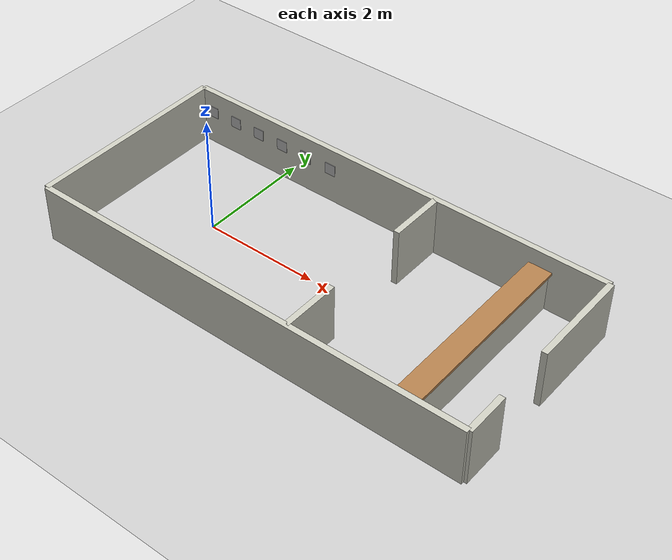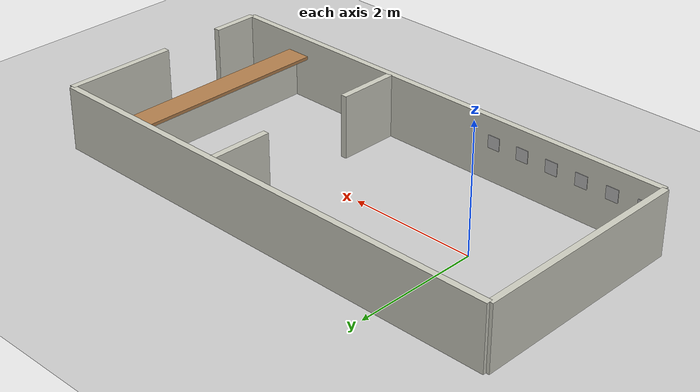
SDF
<sdf version="1.4">
 <world name="aisle">
  <include><uri>model://sun</uri></include>
  <include><uri>model://ground_plane</uri></include>
  <model name="bin_0_tag">
   <static>true</static>
   <pose>-1.5 -1.6875 0.63 0 0 3.1415</pose>
   <link name="link">
    <visual name="visual">
     <geometry><box><size>0.2 0.01 0.2</size></box></geometry>
     <material><script><uri>model://bin/tags</uri><name>product_0</name></script></material>
    </visual>
   </link>
  </model>
  <model name="bin_1_tag">
   <static>true</static>
   <pose>-1.0 -1.6875 0.63 0 0 3.1415</pose>
   <link name="link">
    <visual name="visual">
     <geometry><box><size>0.2 0.01 0.2</size></box></geometry>
     <material><script><uri>model://bin/tags</uri><name>product_1</name></script></material>
    </visual>
   </link>
  </model>
  <model name="bin_2_tag">
   <static>true</static>
   <pose>-0.5 -1.6875 0.63 0 0 3.1415</pose>
   <link name="link">
    <visual name="visual">
     <geometry><box><size>0.2 0.01 0.2</size></box></geometry>
     <material><script><uri>model://bin/tags</uri><name>product_2</name></script></material>
    </visual>
   </link>
  </model>
  <model name="bin_3_tag">
   <static>true</static>
   <pose>0.0 -1.6875 0.63 0 0 3.1415</pose>
   <link name="link">
    <visual name="visual">
     <geometry><box><size>0.2 0.01 0.2</size></box></geometry>
     <material><script><uri>model://bin/tags</uri><name>product_3</name></script></material>
    </visual>
   </link>
  </model>
  <model name="bin_4_tag">
   <static>true</static>
   <pose>0.5 -1.6875 0.63 0 0 3.1415</pose>
   <link name="link">
    <visual name="visual">
     <geometry><box><size>0.2 0.01 0.2</size></box></geometry>
     <material><script><uri>model://bin/tags</uri><name>product_4</name></script></material>
    </visual>
   </link>
  </model>
  <model name="bin_5_tag">
   <static>true</static>
   <pose>1.0 -1.6875 0.63 0 0 3.1415</pose>
   <link name="link">
    <visual name="visual">
     <geometry><box><size>0.2 0.01 0.2</size></box></geometry>
     <material><script><uri>model://bin/tags</uri><name>product_5</name></script></material>
    </visual>
   </link>
  </model>
  <model name="bin_6_tag">
   <static>true</static>
   <pose>-1.5 1.6875 0.63 0 0 0</pose>
   <link name="link">
    <visual name="visual">
     <geometry><box><size>0.2 0.01 0.2</size></box></geometry>
     <material><script><uri>model://bin/tags</uri><name>product_6</name></script></material>
    </visual>
   </link>
  </model>
  <model name="bin_7_tag">
   <static>true</static>
   <pose>-1.0 1.6875 0.63 0 0 0</pose>
   <link name="link">
    <visual name="visual">
     <geometry><box><size>0.2 0.01 0.2</size></box></geometry>
     <material><script><uri>model://bin/tags</uri><name>product_7</name></script></material>
    </visual>
   </link>
  </model>
  <model name="bin_8_tag">
   <static>true</static>
   <pose>-0.5 1.6875 0.63 0 0 0</pose>
   <link name="link">
    <visual name="visual">
     <geometry><box><size>0.2 0.01 0.2</size></box></geometry>
     <material><script><uri>model://bin/tags</uri><name>product_8</name></script></material>
    </visual>
   </link>
  </model>
  <model name="bin_9_tag">
   <static>true</static>
   <pose>0.0 1.6875 0.63 0 0 0</pose>
   <link name="link">
    <visual name="visual">
     <geometry><box><size>0.2 0.01 0.2</size></box></geometry>
     <material><script><uri>model://bin/tags</uri><name>product_9</name></script></material>
    </visual>
   </link>
  </model>
  <model name="bin_10_tag">
   <static>true</static>
   <pose>0.5 1.6875 0.63 0 0 0</pose>
   <link name="link">
    <visual name="visual">
     <geometry><box><size>0.2 0.01 0.2</size></box></geometry>
     <material><script><uri>model://bin/tags</uri><name>product_10</name></script></material>
    </visual>
   </link>
  </model>
  <model name="bin_11_tag">
   <static>true</static>
   <pose>1.0 1.6875 0.63 0 0 0</pose>
   <link name="link">
    <visual name="visual">
     <geometry><box><size>0.2 0.01 0.2</size></box></geometry>
     <material><script><uri>model://bin/tags</uri><name>product_11</name></script></material>
    </visual>
   </link>
  </model>
  <model name="wall_1">
   <static>true</static>
   <pose>2.125 -1.75 0.5 0 0 0</pose>
   <link name="link">
    <collision name="visual"><geometry><box><size>7.75 0.1 1.0</size></box></geometry></collision>
    <visual name="visual">
     <geometry><box><size>7.75 0.1 1.0</size></box></geometry>
     <material><script><name>Gazebo/PaintedWall</name></script></material>
    </visual>
   </link>
  </model>
  <model name="wall_2">
   <static>true</static>
   <pose>-1.75 0.0 0.5 0 0 0</pose>
   <link name="link">
    <collision name="visual"><geometry><box><size>0.1 3.5 1.0</size></box></geometry></collision>
    <visual name="visual">
     <geometry><box><size>0.1 3.5 1.0</size></box></geometry>
     <material><script><name>Gazebo/PaintedWall</name></script></material>
    </visual>
   </link>
  </model>
  <model name="wall_3">
   <static>true</static>
   <pose>2.125 1.75 0.5 0 0 0</pose>
   <link name="link">
    <collision name="visual"><geometry><box><size>7.75 0.1 1.0</size></box></geometry></collision>
    <visual name="visual">
     <geometry><box><size>7.75 0.1 1.0</size></box></geometry>
     <material><script><name>Gazebo/PaintedWall</name></script></material>
    </visual>
   </link>
  </model>
  <model name="wall_4">
   <static>true</static>
   <pose>3.0 1.25 0.5 0 0 0</pose>
   <link name="link">
    <collision name="visual"><geometry><box><size>0.1 1.0 1.0</size></box></geometry></collision>
    <visual name="visual">
     <geometry><box><size>0.1 1.0 1.0</size></box></geometry>
     <material><script><name>Gazebo/PaintedWall</name></script></material>
    </visual>
   </link>
  </model>
  <model name="wall_5">
   <static>true</static>
   <pose>3.0 -1.25 0.5 0 0 0</pose>
   <link name="link">
    <collision name="visual"><geometry><box><size>0.1 1.0 1.0</size></box></geometry></collision>
    <visual name="visual">
     <geometry><box><size>0.1 1.0 1.0</size></box></geometry>
     <material><script><name>Gazebo/PaintedWall</name></script></material>
    </visual>
   </link>
  </model>
  <model name="wall_6">
   <static>true</static>
   <pose>6.0 -1.375 0.5 0 0 0</pose>
   <link name="link">
    <collision name="visual"><geometry><box><size>0.1 0.75 1.0</size></box></geometry></collision>
    <visual name="visual">
     <geometry><box><size>0.1 0.75 1.0</size></box></geometry>
     <material><script><name>Gazebo/PaintedWall</name></script></material>
    </visual>
   </link>
  </model>
  <model name="wall_7">
   <static>true</static>
   <pose>6.0 0.875 0.5 0 0 0</pose>
   <link name="link">
    <collision name="visual"><geometry><box><size>0.1 1.75 1.0</size></box></geometry></collision>
    <visual name="visual">
     <geometry><box><size>0.1 1.75 1.0</size></box></geometry>
     <material><script><name>Gazebo/PaintedWall</name></script></material>
    </visual>
   </link>
  </model>
  <model name="wall_8">
   <static>true</static>
   <pose>5.0 0.0 0.35 0 0 0</pose>
   <link name="link">
    <collision name="visual"><geometry><box><size>0.1 3.5 0.7</size></box></geometry></collision>
    <visual name="visual">
     <geometry><box><size>0.1 3.5 0.7</size></box></geometry>
     <material><script><name>Gazebo/PaintedWall</name></script></material>
    </visual>
   </link>
  </model>
  <model name="counter_top">
   <static>true</static>
   <pose>4.9 0 0.7 0 0 0</pose>
   <link name="link">
    <collision name="collision"><geometry><box><size>0.4 3.5 0.05</size></box></geometry></collision>
    <visual name="visual">
     <geometry><box><size>0.4 3.5 0.05</size></box></geometry>
     <material><script><name>Gazebo/WoodFloor</name></script></material>
    </visual>
   </link>
  </model>
 </world>
</sdf>
